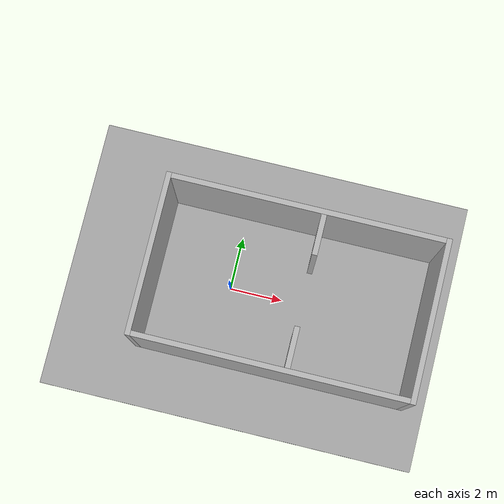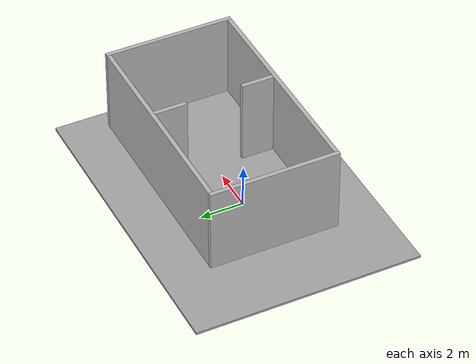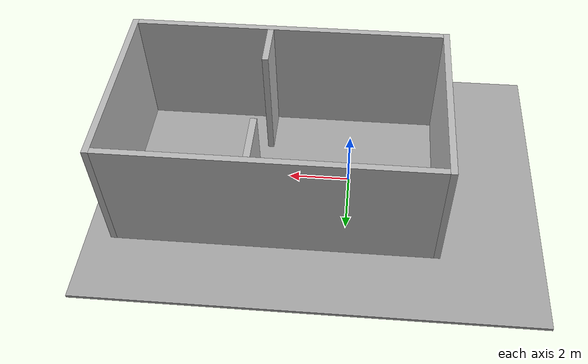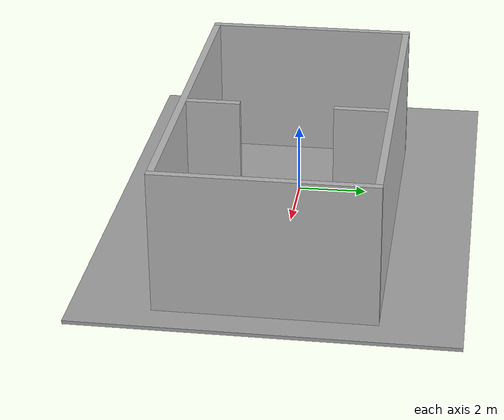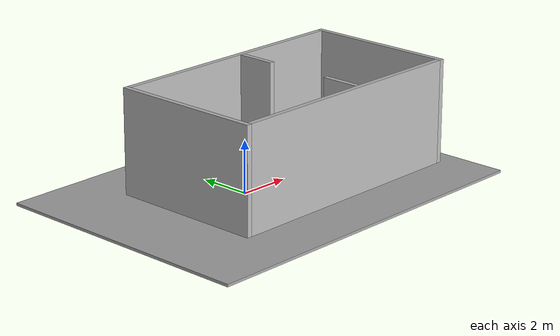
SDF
<?xml version='1.0' encoding='utf-8'?>
<sdf version="1.6">
  <world name="default">
    <gravity>0 0 -9.8</gravity>
    <magnetic_field>6e-06 2.3e-05 -4.2e-05</magnetic_field>
    <physics name="default_physics" type="ode">
      <max_step_size>.001</max_step_size>
      <real_time_factor>1</real_time_factor>
      <real_time_update_rate>1000</real_time_update_rate>
    </physics>
    <scene>
      <ambient>.5 .5 .5 1</ambient>
      <background>.7 .7 .7 1</background>
      <shadows>false</shadows>
    </scene>
    <light name="sun" type="directional">
      <pose>0 0 10 0 0 0</pose>
      <diffuse>.8 .8 .8 1</diffuse>
      <direction>-.2 .1 -1</direction>
    </light>
    <model name="arena_floor">
      <static>true</static>
      <pose>1.000000 0.000000 -0.050000 0.000000 0.000000 0.000000</pose>
      <link name="body">
        <collision name="collision">
          <geometry>
            <box>
              <size>14.400000 10.400000 0.100000</size>
            </box>
          </geometry>
        </collision>
        <visual name="visual">
          <geometry>
            <box>
              <size>14.400000 10.400000 0.100000</size>
            </box>
          </geometry>
          <material>
            <ambient>.65 .65 .65 1</ambient>
            <diffuse>.65 .65 .65 1</diffuse>
          </material>
        </visual>
      </link>
    </model>
    <model name="west">
      <static>true</static>
      <pose>-2.9 0 2 0 0 0</pose>
      <link name="body">
        <collision name="collision">
          <geometry>
            <box>
              <size>0.2 6 4</size>
            </box>
          </geometry>
        </collision>
        <visual name="visual">
          <geometry>
            <box>
              <size>0.2 6 4</size>
            </box>
          </geometry>
        </visual>
      </link>
    </model>
    <model name="east">
      <static>true</static>
      <pose>7.3 0 2 0 0 0</pose>
      <link name="body">
        <collision name="collision">
          <geometry>
            <box>
              <size>0.2 6 4</size>
            </box>
          </geometry>
        </collision>
        <visual name="visual">
          <geometry>
            <box>
              <size>0.2 6 4</size>
            </box>
          </geometry>
        </visual>
      </link>
    </model>
    <model name="south">
      <static>true</static>
      <pose>2.2 -2.9 2 0 0 0</pose>
      <link name="body">
        <collision name="collision">
          <geometry>
            <box>
              <size>10 0.2 4</size>
            </box>
          </geometry>
        </collision>
        <visual name="visual">
          <geometry>
            <box>
              <size>10 0.2 4</size>
            </box>
          </geometry>
        </visual>
      </link>
    </model>
    <model name="north">
      <static>true</static>
      <pose>2.2 2.9 2 0 0 0</pose>
      <link name="body">
        <collision name="collision">
          <geometry>
            <box>
              <size>10 0.2 4</size>
            </box>
          </geometry>
        </collision>
        <visual name="visual">
          <geometry>
            <box>
              <size>10 0.2 4</size>
            </box>
          </geometry>
        </visual>
      </link>
    </model>
    <model name="room_partition_south">
      <static>true</static>
      <pose>2.8 -2.05 2 0 0 0</pose>
      <link name="body">
        <collision name="collision">
          <geometry>
            <box>
              <size>0.2 1.5 4</size>
            </box>
          </geometry>
        </collision>
        <visual name="visual">
          <geometry>
            <box>
              <size>0.2 1.5 4</size>
            </box>
          </geometry>
        </visual>
      </link>
    </model>
    <model name="room_partition_north">
      <static>true</static>
      <pose>2.8 2.05 2 0 0 0</pose>
      <link name="body">
        <collision name="collision">
          <geometry>
            <box>
              <size>0.2 1.5 4</size>
            </box>
          </geometry>
        </collision>
        <visual name="visual">
          <geometry>
            <box>
              <size>0.2 1.5 4</size>
            </box>
          </geometry>
        </visual>
      </link>
    </model>
  </world>
</sdf>
